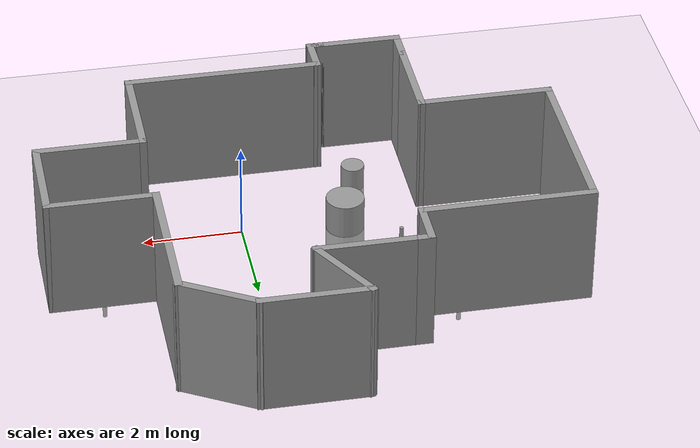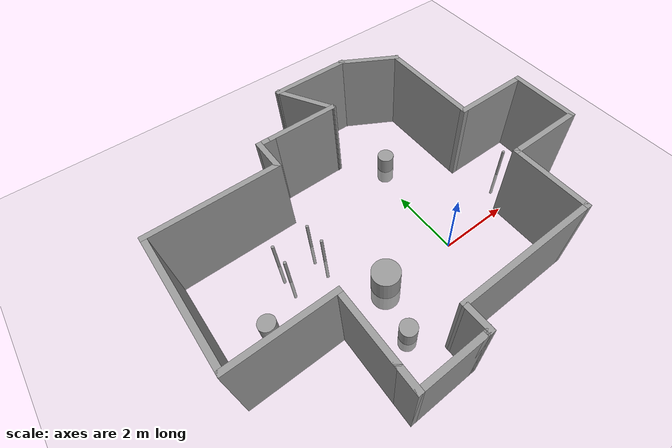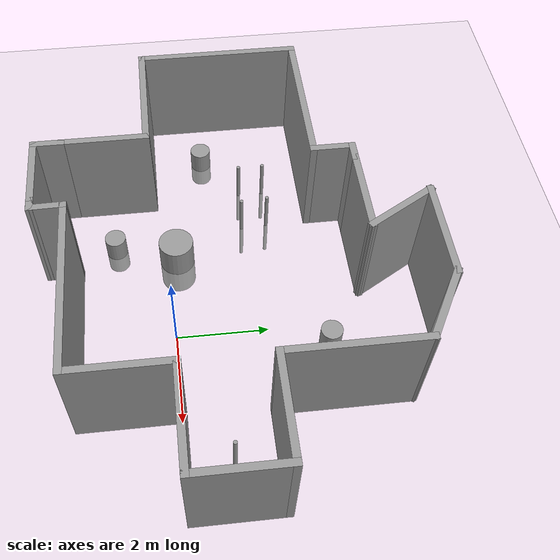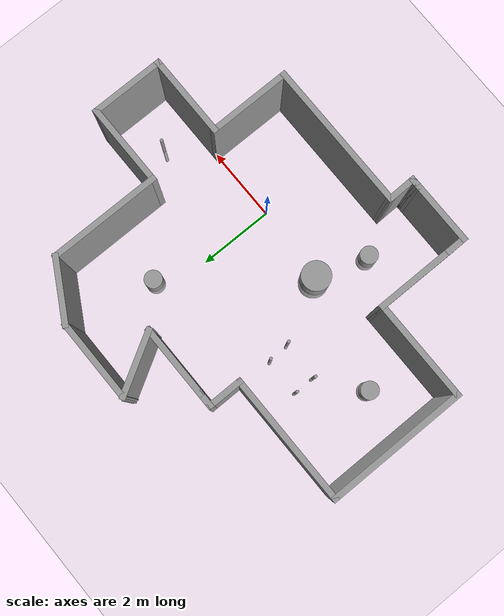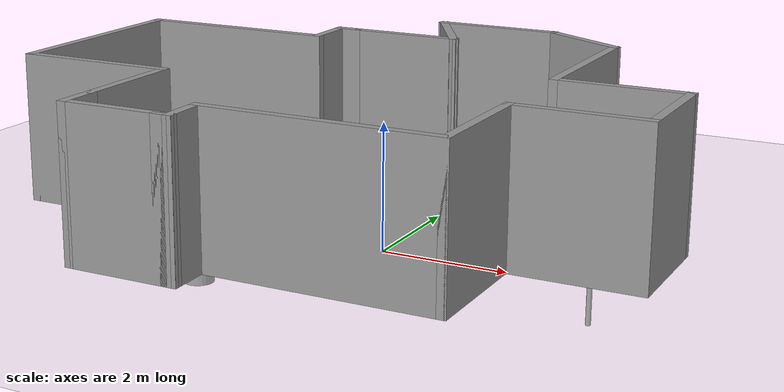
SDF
<sdf version="1.6">
 <world name="default">
  <light name="sun" type="directional">
   <pose>0 0 10 0 -0 0</pose>
   <diffuse>0.8 0.8 0.8 1</diffuse>
   <specular>0.2 0.2 0.2 1</specular>
   <attenuation>
    <range>1000</range>
    <constant>0.9</constant>
    <linear>0.01</linear>
    <quadratic>0.001</quadratic>
   </attenuation>
   <direction>-0.5 0.1 -0.9</direction>
  </light>
  <model name="ground_plane">
   <static>1</static>
   <link name="link">
    <collision name="collision">
     <geometry><plane><normal>0 0 1</normal><size>100 100</size></plane></geometry>
     <surface>
      <contact><collide_bitmask>65535</collide_bitmask></contact>
      <friction><ode><mu>100</mu><mu2>50</mu2></ode></friction>
     </surface>
    </collision>
    <visual name="visual">
     <cast_shadows>0</cast_shadows>
     <geometry><plane><normal>0 0 1</normal><size>100 100</size></plane></geometry>
     <material>
      <script><uri>file://media/materials/scripts/gazebo.material</uri><name>Gazebo/Grey</name></script>
     </material>
    </visual>
   </link>
  </model>
  <gravity>0 0 -9.8</gravity>
  <magnetic_field>6e-06 2.3e-05 -4.2e-05</magnetic_field>
  <atmosphere type="adiabatic"/>
  <physics name="default_physics" default="0" type="ode">
   <max_step_size>0.001</max_step_size>
   <real_time_factor>1</real_time_factor>
   <real_time_update_rate>1000</real_time_update_rate>
  </physics>
  <scene><ambient>0.4 0.4 0.4 1</ambient><background>0.7 0.7 0.7 1</background><shadows>1</shadows></scene>
  <audio><device>default</device></audio>
  <spherical_coordinates>
   <surface_model>EARTH_WGS84</surface_model>
   <latitude_deg>0</latitude_deg>
   <longitude_deg>0</longitude_deg>
   <elevation>0</elevation>
   <heading_deg>0</heading_deg>
  </spherical_coordinates>
  <model name="Labyrinth1">
   <pose>-1.12937 1.39455 0 0 -0 0</pose>
   <link name="Wall_20">
    <collision name="Wall_20_Collision">
     <geometry><box><size>4 0.15 2.5</size></box></geometry>
     <pose>0 0 1.25 0 -0 0</pose>
    </collision>
    <visual name="Wall_20_Visual">
     <pose>0 0 1.25 0 -0 0</pose>
     <geometry><box><size>4 0.15 2.5</size></box></geometry>
     <material>
      <script><uri>file://media/materials/scripts/gazebo.material</uri><name>Gazebo/Grey</name></script>
      <ambient>1 1 1 1</ambient>
     </material>
     <meta><layer>0</layer></meta>
    </visual>
    <pose>1.14282 -3.47013 0 0 -0 0</pose>
   </link>
   <link name="Wall_23">
    <collision name="Wall_23_Collision">
     <geometry><box><size>2.25 0.15 2.5</size></box></geometry>
     <pose>0 0 1.25 0 -0 0</pose>
    </collision>
    <visual name="Wall_23_Visual">
     <pose>0 0 1.25 0 -0 0</pose>
     <geometry><box><size>2.25 0.15 2.5</size></box></geometry>
     <material>
      <script><uri>file://media/materials/scripts/gazebo.material</uri><name>Gazebo/Grey</name></script>
      <ambient>1 1 1 1</ambient>
     </material>
     <meta><layer>0</layer></meta>
    </visual>
    <pose>3.06782 -2.42013 0 0 -0 1.5708</pose>
   </link>
   <link name="Wall_24">
    <collision name="Wall_24_Collision">
     <geometry><box><size>2.25 0.15 2.5</size></box></geometry>
     <pose>0 0 1.25 0 -0 0</pose>
    </collision>
    <visual name="Wall_24_Visual">
     <pose>0 0 1.25 0 -0 0</pose>
     <geometry><box><size>2.25 0.15 2.5</size></box></geometry>
     <material>
      <script><uri>file://media/materials/scripts/gazebo.material</uri><name>Gazebo/Grey</name></script>
      <ambient>1 1 1 1</ambient>
     </material>
     <meta><layer>0</layer></meta>
    </visual>
    <pose>4.11782 -1.37013 0 0 -0 0</pose>
   </link>
   <link name="Wall_25">
    <collision name="Wall_25_Collision">
     <geometry><box><size>2 0.15 2.5</size></box></geometry>
     <pose>0 0 1.25 0 -0 0</pose>
    </collision>
    <visual name="Wall_25_Visual">
     <pose>0 0 1.25 0 -0 0</pose>
     <geometry><box><size>2 0.15 2.5</size></box></geometry>
     <material>
      <script><uri>file://media/materials/scripts/gazebo.material</uri><name>Gazebo/Grey</name></script>
      <ambient>1 1 1 1</ambient>
     </material>
     <meta><layer>0</layer></meta>
    </visual>
    <pose>5.16782 -0.445129 0 0 -0 1.5708</pose>
   </link>
   <link name="Wall_26">
    <collision name="Wall_26_Collision">
     <geometry><box><size>2.25 0.15 2.5</size></box></geometry>
     <pose>0 0 1.25 0 -0 0</pose>
    </collision>
    <visual name="Wall_26_Visual">
     <pose>0 0 1.25 0 -0 0</pose>
     <geometry><box><size>2.25 0.15 2.5</size></box></geometry>
     <material>
      <script><uri>file://media/materials/scripts/gazebo.material</uri><name>Gazebo/Grey</name></script>
      <ambient>1 1 1 1</ambient>
     </material>
     <meta><layer>0</layer></meta>
    </visual>
    <pose>4.11782 0.479871 0 0 -0 3.14159</pose>
   </link>
   <link name="Wall_29">
    <collision name="Wall_29_Collision">
     <geometry><box><size>3 0.15 2.5</size></box></geometry>
     <pose>0 0 1.25 0 -0 0</pose>
    </collision>
    <visual name="Wall_29_Visual">
     <pose>0 0 1.25 0 -0 0</pose>
     <geometry><box><size>3 0.15 2.5</size></box></geometry>
     <material>
      <script><uri>file://media/materials/scripts/gazebo.material</uri><name>Gazebo/Grey</name></script>
      <ambient>1 1 1 1</ambient>
     </material>
     <meta><layer>0</layer></meta>
    </visual>
    <pose>3.06782 1.90487 0 0 -0 1.5708</pose>
   </link>
   <link name="Wall_30">
    <collision name="Wall_30_Collision">
     <geometry><box><size>1.75 0.15 2.5</size></box></geometry>
     <pose>0 0 1.25 0 -0 0</pose>
    </collision>
    <visual name="Wall_30_Visual">
     <pose>0 0 1.25 0 -0 0</pose>
     <geometry><box><size>1.75 0.15 2.5</size></box></geometry>
     <material>
      <script><uri>file://media/materials/scripts/gazebo.material</uri><name>Gazebo/Grey</name></script>
      <ambient>1 1 1 1</ambient>
     </material>
     <meta><layer>0</layer></meta>
    </visual>
    <pose>2.375 3.72987 0 0 -0 2.61799</pose>
   </link>
   <link name="Wall_31">
    <collision name="Wall_31_Collision">
     <geometry><box><size>2.25 0.15 2.5</size></box></geometry>
     <pose>0 0 1.25 0 -0 0</pose>
    </collision>
    <visual name="Wall_31_Visual">
     <pose>0 0 1.25 0 -0 0</pose>
     <geometry><box><size>2.25 0.15 2.5</size></box></geometry>
     <material>
      <script><uri>file://media/materials/scripts/gazebo.material</uri><name>Gazebo/Grey</name></script>
      <ambient>1 1 1 1</ambient>
     </material>
     <meta><layer>0</layer></meta>
    </visual>
    <pose>0.63218 4.12987 0 0 -0 3.14159</pose>
   </link>
   <link name="Wall_32">
    <collision name="Wall_32_Collision">
     <geometry><box><size>1.75 0.15 2.5</size></box></geometry>
     <pose>0 0 1.25 0 -0 0</pose>
    </collision>
    <visual name="Wall_32_Visual">
     <pose>0 0 1.25 0 -0 0</pose>
     <geometry><box><size>1.75 0.15 2.5</size></box></geometry>
     <material>
      <script><uri>file://media/materials/scripts/gazebo.material</uri><name>Gazebo/Grey</name></script>
      <ambient>1 1 1 1</ambient>
     </material>
     <meta><layer>0</layer></meta>
    </visual>
    <pose>-0.01782 3.43705 0 0 -0 -1.0472</pose>
   </link>
   <link name="Wall_33">
    <collision name="Wall_33_Collision">
     <geometry><box><size>2 0.15 2.5</size></box></geometry>
     <pose>0 0 1.25 0 -0 0</pose>
    </collision>
    <visual name="Wall_33_Visual">
     <pose>0 0 1.25 0 -0 0</pose>
     <geometry><box><size>2 0.15 2.5</size></box></geometry>
     <material>
      <script><uri>file://media/materials/scripts/gazebo.material</uri><name>Gazebo/Grey</name></script>
      <ambient>1 1 1 1</ambient>
     </material>
     <meta><layer>0</layer></meta>
    </visual>
    <pose>-0.54282 2.74423 0 0 -0 3.14159</pose>
   </link>
   <link name="Wall_34">
    <collision name="Wall_34_Collision">
     <geometry><box><size>0.5 0.15 2.5</size></box></geometry>
     <pose>0 0 1.25 0 -0 0</pose>
    </collision>
    <visual name="Wall_34_Visual">
     <pose>0 0 1.25 0 -0 0</pose>
     <geometry><box><size>0.5 0.15 2.5</size></box></geometry>
     <material>
      <script><uri>file://media/materials/scripts/gazebo.material</uri><name>Gazebo/Grey</name></script>
      <ambient>1 1 1 1</ambient>
     </material>
     <meta><layer>0</layer></meta>
    </visual>
    <pose>-1.64282 2.74423 0 0 -0 3.14159</pose>
   </link>
   <link name="Wall_35">
    <collision name="Wall_35_Collision">
     <geometry><box><size>1 0.15 2.5</size></box></geometry>
     <pose>0 0 1.25 0 -0 0</pose>
    </collision>
    <visual name="Wall_35_Visual">
     <pose>0 0 1.25 0 -0 0</pose>
     <geometry><box><size>1 0.15 2.5</size></box></geometry>
     <material>
      <script><uri>file://media/materials/scripts/gazebo.material</uri><name>Gazebo/Grey</name></script>
      <ambient>1 1 1 1</ambient>
     </material>
     <meta><layer>0</layer></meta>
    </visual>
    <pose>-1.81782 2.31923 0 0 -0 -1.5708</pose>
   </link>
   <link name="Wall_36">
    <collision name="Wall_36_Collision">
     <geometry><box><size>3.5 0.15 2.5</size></box></geometry>
     <pose>0 0 1.25 0 -0 0</pose>
    </collision>
    <visual name="Wall_36_Visual">
     <pose>0 0 1.25 0 -0 0</pose>
     <geometry><box><size>3.5 0.15 2.5</size></box></geometry>
     <material>
      <script><uri>file://media/materials/scripts/gazebo.material</uri><name>Gazebo/Grey</name></script>
      <ambient>1 1 1 1</ambient>
     </material>
     <meta><layer>0</layer></meta>
    </visual>
    <pose>-3.49282 1.89423 0 0 -0 3.14159</pose>
   </link>
   <link name="Wall_37">
    <collision name="Wall_37_Collision">
     <geometry><box><size>3.75 0.15 2.5</size></box></geometry>
     <pose>0 0 1.25 0 -0 0</pose>
    </collision>
    <visual name="Wall_37_Visual">
     <pose>0 0 1.25 0 -0 0</pose>
     <geometry><box><size>3.75 0.15 2.5</size></box></geometry>
     <material>
      <script><uri>file://media/materials/scripts/gazebo.material</uri><name>Gazebo/Grey</name></script>
      <ambient>1 1 1 1</ambient>
     </material>
     <meta><layer>0</layer></meta>
    </visual>
    <pose>-5.16782 0.094231 0 0 -0 -1.5708</pose>
   </link>
   <link name="Wall_38">
    <collision name="Wall_38_Collision">
     <geometry><box><size>2.75 0.15 2.5</size></box></geometry>
     <pose>0 0 1.25 0 -0 0</pose>
    </collision>
    <visual name="Wall_38_Visual">
     <pose>0 0 1.25 0 -0 0</pose>
     <geometry><box><size>2.75 0.15 2.5</size></box></geometry>
     <material>
      <script><uri>file://media/materials/scripts/gazebo.material</uri><name>Gazebo/Grey</name></script>
      <ambient>1 1 1 1</ambient>
     </material>
     <meta><layer>0</layer></meta>
    </visual>
    <pose>-3.86782 -1.70577 0 0 -0 0</pose>
   </link>
   <link name="Wall_43">
    <collision name="Wall_43_Collision">
     <geometry><box><size>2 0.15 2.5</size></box></geometry>
     <pose>0 0 1.25 0 -0 0</pose>
    </collision>
    <visual name="Wall_43_Visual">
     <pose>0 0 1.25 0 -0 0</pose>
     <geometry><box><size>2 0.15 2.5</size></box></geometry>
     <material>
      <script><uri>file://media/materials/scripts/gazebo.material</uri><name>Gazebo/Grey</name></script>
      <ambient>1 1 1 1</ambient>
     </material>
     <meta><layer>0</layer></meta>
    </visual>
    <pose>-2.56782 -2.63077 0 0 -0 -1.5708</pose>
   </link>
   <link name="Wall_44">
    <collision name="Wall_44_Collision">
     <geometry><box><size>0.75 0.15 2.5</size></box></geometry>
     <pose>0 0 1.25 0 -0 0</pose>
    </collision>
    <visual name="Wall_44_Visual">
     <pose>0 0 1.25 0 -0 0</pose>
     <geometry><box><size>0.75 0.15 2.5</size></box></geometry>
     <material>
      <script><uri>file://media/materials/scripts/gazebo.material</uri><name>Gazebo/Grey</name></script>
      <ambient>1 1 1 1</ambient>
     </material>
     <meta><layer>0</layer></meta>
    </visual>
    <pose>-2.56782 -3.85577 0 0 -0 -1.5708</pose>
   </link>
   <link name="Wall_45">
    <collision name="Wall_45_Collision">
     <geometry><box><size>1.75 0.15 2.5</size></box></geometry>
     <pose>0 0 1.25 0 -0 0</pose>
    </collision>
    <visual name="Wall_45_Visual">
     <pose>0 0 1.25 0 -0 0</pose>
     <geometry><box><size>1.75 0.15 2.5</size></box></geometry>
     <material>
      <script><uri>file://media/materials/scripts/gazebo.material</uri><name>Gazebo/Grey</name></script>
      <ambient>1 1 1 1</ambient>
     </material>
     <meta><layer>0</layer></meta>
    </visual>
    <pose>-1.76782 -4.15577 0 0 -0 0</pose>
   </link>
   <link name="Wall_46">
    <collision name="Wall_46_Collision">
     <geometry><box><size>0.25 0.15 2.5</size></box></geometry>
     <pose>0 0 1.25 0 -0 0</pose>
    </collision>
    <visual name="Wall_46_Visual">
     <pose>0 0 1.25 0 -0 0</pose>
     <geometry><box><size>0.25 0.15 2.5</size></box></geometry>
     <material>
      <script><uri>file://media/materials/scripts/gazebo.material</uri><name>Gazebo/Grey</name></script>
      <ambient>1 1 1 1</ambient>
     </material>
     <meta><layer>0</layer></meta>
    </visual>
    <pose>-0.91782 -4.15577 0 0 -0 0</pose>
   </link>
   <link name="Wall_47">
    <collision name="Wall_47_Collision">
     <geometry><box><size>0.25 0.15 2.5</size></box></geometry>
     <pose>0 0 1.25 0 -0 0</pose>
    </collision>
    <visual name="Wall_47_Visual">
     <pose>0 0 1.25 0 -0 0</pose>
     <geometry><box><size>0.25 0.15 2.5</size></box></geometry>
     <material>
      <script><uri>file://media/materials/scripts/gazebo.material</uri><name>Gazebo/Grey</name></script>
      <ambient>1 1 1 1</ambient>
     </material>
     <meta><layer>0</layer></meta>
    </visual>
    <pose>-0.91782 -4.15577 0 0 -0 3.14159</pose>
   </link>
   <link name="Wall_56">
    <collision name="Wall_56_Collision">
     <geometry><box><size>0.25 0.15 2.5</size></box></geometry>
     <pose>0 0 1.25 0 -0 0</pose>
    </collision>
    <visual name="Wall_56_Visual">
     <pose>0 0 1.25 0 -0 0</pose>
     <geometry><box><size>0.25 0.15 2.5</size></box></geometry>
     <material>
      <script><uri>file://media/materials/scripts/gazebo.material</uri><name>Gazebo/Grey</name></script>
      <ambient>1 1 1 1</ambient>
     </material>
     <meta><layer>0</layer></meta>
    </visual>
    <pose>-0.81782 -4.15577 0 0 -0 0</pose>
   </link>
   <link name="Wall_57">
    <collision name="Wall_57_Collision">
     <geometry><box><size>0.835791 0.15 2.5</size></box></geometry>
     <pose>0 0 1.25 0 -0 0</pose>
    </collision>
    <visual name="Wall_57_Visual">
     <pose>0 0 1.25 0 -0 0</pose>
     <geometry><box><size>0.835791 0.15 2.5</size></box></geometry>
     <material>
      <script><uri>file://media/materials/scripts/gazebo.material</uri><name>Gazebo/Grey</name></script>
      <ambient>1 1 1 1</ambient>
     </material>
     <meta><layer>0</layer></meta>
    </visual>
    <pose>-0.775 -3.81295 0 0 -0 1.59174</pose>
   </link>
   <static>1</static>
  </model>
  <model name="table_leg">
   <link name="link_0">
    <inertial>
     <mass>0.0133696</mass>
     <inertia>
      <ixx>0.00420906</ixx>
      <ixy>0</ixy>
      <ixz>0</ixz>
      <iyy>0.00420906</iyy>
      <iyz>0</iyz>
      <izz>1.1504e-05</izz>
     </inertia>
    </inertial>
    <pose>-5e-06 0 0 0 -0 0</pose>
    <visual name="visual">
     <geometry><cylinder><radius>0.041484</radius><length>1.94235</length></cylinder></geometry>
     <material>
      <lighting>1</lighting>
      <script><uri>file://media/materials/scripts/gazebo.material</uri><name>Gazebo/Grey</name></script>
     </material>
    </visual>
    <collision name="collision">
     <geometry><cylinder><radius>0.041484</radius><length>1.94235</length></cylinder></geometry>
     <surface>
      <friction>
       <ode><mu>1</mu><mu2>1</mu2><fdir1>0 0 0</fdir1><slip1>0</slip1><slip2>0</slip2></ode>
       <torsional>
        <coefficient>1</coefficient>
        <patch_radius>0</patch_radius>
        <surface_radius>0</surface_radius>
        <use_patch_radius>1</use_patch_radius>
        <ode><slip>0</slip></ode>
       </torsional>
      </friction>
      <bounce><restitution_coefficient>0</restitution_coefficient><threshold>1e+06</threshold></bounce>
      <contact>
       <collide_without_contact>0</collide_without_contact>
       <collide_without_contact_bitmask>1</collide_without_contact_bitmask>
       <collide_bitmask>1</collide_bitmask>
       <ode>
        <soft_cfm>0</soft_cfm>
        <soft_erp>0.2</soft_erp>
        <kp>1e+13</kp>
        <kd>1</kd>
        <max_vel>0.01</max_vel>
        <min_depth>0</min_depth>
       </ode>
       <bullet>
        <split_impulse>1</split_impulse>
        <split_impulse_penetration_threshold>-0.01</split_impulse_penetration_threshold>
        <soft_cfm>0</soft_cfm>
        <soft_erp>0.2</soft_erp>
        <kp>1e+13</kp>
        <kd>1</kd>
       </bullet>
      </contact>
     </surface>
    </collision>
   </link>
   <static>0</static>
   <pose>-3.9606 2.33283 0 0 -0 0</pose>
  </model>
  <model name="table_leg_0">
   <link name="link_0">
    <inertial>
     <mass>0.0133696</mass>
     <inertia>
      <ixx>0.00420906</ixx>
      <ixy>0</ixy>
      <ixz>0</ixz>
      <iyy>0.00420906</iyy>
      <iyz>0</iyz>
      <izz>1.1504e-05</izz>
     </inertia>
    </inertial>
    <pose>-5e-06 0 0 0 -0 0</pose>
    <visual name="visual">
     <geometry><cylinder><radius>0.041484</radius><length>1.94235</length></cylinder></geometry>
     <material>
      <lighting>1</lighting>
      <script><uri>file://media/materials/scripts/gazebo.material</uri><name>Gazebo/Grey</name></script>
     </material>
    </visual>
    <collision name="collision">
     <geometry><cylinder><radius>0.041484</radius><length>1.94235</length></cylinder></geometry>
     <surface>
      <friction>
       <ode><mu>1</mu><mu2>1</mu2><fdir1>0 0 0</fdir1><slip1>0</slip1><slip2>0</slip2></ode>
       <torsional>
        <coefficient>1</coefficient>
        <patch_radius>0</patch_radius>
        <surface_radius>0</surface_radius>
        <use_patch_radius>1</use_patch_radius>
        <ode><slip>0</slip></ode>
       </torsional>
      </friction>
      <bounce><restitution_coefficient>0</restitution_coefficient><threshold>1e+06</threshold></bounce>
      <contact>
       <collide_without_contact>0</collide_without_contact>
       <collide_without_contact_bitmask>1</collide_without_contact_bitmask>
       <collide_bitmask>1</collide_bitmask>
       <ode>
        <soft_cfm>0</soft_cfm>
        <soft_erp>0.2</soft_erp>
        <kp>1e+13</kp>
        <kd>1</kd>
        <max_vel>0.01</max_vel>
        <min_depth>0</min_depth>
       </ode>
       <bullet>
        <split_impulse>1</split_impulse>
        <split_impulse_penetration_threshold>-0.01</split_impulse_penetration_threshold>
        <soft_cfm>0</soft_cfm>
        <soft_erp>0.2</soft_erp>
        <kp>1e+13</kp>
        <kd>1</kd>
       </bullet>
      </contact>
     </surface>
    </collision>
   </link>
   <static>0</static>
   <pose>-3.95816 1.76145 0 0 -0 0</pose>
  </model>
  <model name="table_leg_1">
   <link name="link_0">
    <inertial>
     <mass>0.0133696</mass>
     <inertia>
      <ixx>0.00420906</ixx>
      <ixy>0</ixy>
      <ixz>0</ixz>
      <iyy>0.00420906</iyy>
      <iyz>0</iyz>
      <izz>1.1504e-05</izz>
     </inertia>
    </inertial>
    <pose>-5e-06 0 0 0 -0 0</pose>
    <visual name="visual">
     <geometry><cylinder><radius>0.041484</radius><length>1.94235</length></cylinder></geometry>
     <material>
      <lighting>1</lighting>
      <script><uri>file://media/materials/scripts/gazebo.material</uri><name>Gazebo/Grey</name></script>
     </material>
    </visual>
    <collision name="collision">
     <geometry><cylinder><radius>0.041484</radius><length>1.94235</length></cylinder></geometry>
     <surface>
      <friction>
       <ode><mu>1</mu><mu2>1</mu2><fdir1>0 0 0</fdir1><slip1>0</slip1><slip2>0</slip2></ode>
       <torsional>
        <coefficient>1</coefficient>
        <patch_radius>0</patch_radius>
        <surface_radius>0</surface_radius>
        <use_patch_radius>1</use_patch_radius>
        <ode><slip>0</slip></ode>
       </torsional>
      </friction>
      <bounce><restitution_coefficient>0</restitution_coefficient><threshold>1e+06</threshold></bounce>
      <contact>
       <collide_without_contact>0</collide_without_contact>
       <collide_without_contact_bitmask>1</collide_without_contact_bitmask>
       <collide_bitmask>1</collide_bitmask>
       <ode>
        <soft_cfm>0</soft_cfm>
        <soft_erp>0.2</soft_erp>
        <kp>1e+13</kp>
        <kd>1</kd>
        <max_vel>0.01</max_vel>
        <min_depth>0</min_depth>
       </ode>
       <bullet>
        <split_impulse>1</split_impulse>
        <split_impulse_penetration_threshold>-0.01</split_impulse_penetration_threshold>
        <soft_cfm>0</soft_cfm>
        <soft_erp>0.2</soft_erp>
        <kp>1e+13</kp>
        <kd>1</kd>
       </bullet>
      </contact>
     </surface>
    </collision>
   </link>
   <static>0</static>
   <pose>-2.94706 2.31739 0 0 -0 0</pose>
  </model>
  <model name="table_leg_2">
   <link name="link_0">
    <inertial>
     <mass>0.0133696</mass>
     <inertia>
      <ixx>0.00420906</ixx>
      <ixy>0</ixy>
      <ixz>0</ixz>
      <iyy>0.00420906</iyy>
      <iyz>0</iyz>
      <izz>1.1504e-05</izz>
     </inertia>
    </inertial>
    <pose>-5e-06 0 0 0 -0 0</pose>
    <visual name="visual">
     <geometry><cylinder><radius>0.041484</radius><length>1.94235</length></cylinder></geometry>
     <material>
      <lighting>1</lighting>
      <script><uri>file://media/materials/scripts/gazebo.material</uri><name>Gazebo/Grey</name></script>
     </material>
    </visual>
    <collision name="collision">
     <geometry><cylinder><radius>0.041484</radius><length>1.94235</length></cylinder></geometry>
     <surface>
      <friction>
       <ode><mu>1</mu><mu2>1</mu2><fdir1>0 0 0</fdir1><slip1>0</slip1><slip2>0</slip2></ode>
       <torsional>
        <coefficient>1</coefficient>
        <patch_radius>0</patch_radius>
        <surface_radius>0</surface_radius>
        <use_patch_radius>1</use_patch_radius>
        <ode><slip>0</slip></ode>
       </torsional>
      </friction>
      <bounce><restitution_coefficient>0</restitution_coefficient><threshold>1e+06</threshold></bounce>
      <contact>
       <collide_without_contact>0</collide_without_contact>
       <collide_without_contact_bitmask>1</collide_without_contact_bitmask>
       <collide_bitmask>1</collide_bitmask>
       <ode>
        <soft_cfm>0</soft_cfm>
        <soft_erp>0.2</soft_erp>
        <kp>1e+13</kp>
        <kd>1</kd>
        <max_vel>0.01</max_vel>
        <min_depth>0</min_depth>
       </ode>
       <bullet>
        <split_impulse>1</split_impulse>
        <split_impulse_penetration_threshold>-0.01</split_impulse_penetration_threshold>
        <soft_cfm>0</soft_cfm>
        <soft_erp>0.2</soft_erp>
        <kp>1e+13</kp>
        <kd>1</kd>
       </bullet>
      </contact>
     </surface>
    </collision>
   </link>
   <static>0</static>
   <pose>-2.90155 1.72376 0 0 -0 0</pose>
  </model>
  <model name="small_cylinder">
   <link name="link_2">
    <inertial>
     <mass>0.838617</mass>
     <inertia>
      <ixx>0.166859</ixx>
      <ixy>0</ixy>
      <ixz>0</ixz>
      <iyy>0.166859</iyy>
      <iyz>0</iyz>
      <izz>0.0631896</izz>
     </inertia>
    </inertial>
    <pose>-0.01653 1.06933 0 0 -0 0</pose>
    <visual name="visual">
     <geometry><cylinder><radius>0.388201</radius><length>1.39123</length></cylinder></geometry>
     <material>
      <lighting>1</lighting>
      <script><uri>file://media/materials/scripts/gazebo.material</uri><name>Gazebo/Grey</name></script>
     </material>
    </visual>
    <collision name="collision">
     <geometry><cylinder><radius>0.388201</radius><length>1.39123</length></cylinder></geometry>
     <surface>
      <friction>
       <ode><mu>1</mu><mu2>1</mu2><fdir1>0 0 0</fdir1><slip1>0</slip1><slip2>0</slip2></ode>
       <torsional>
        <coefficient>1</coefficient>
        <patch_radius>0</patch_radius>
        <surface_radius>0</surface_radius>
        <use_patch_radius>1</use_patch_radius>
        <ode><slip>0</slip></ode>
       </torsional>
      </friction>
      <bounce><restitution_coefficient>0</restitution_coefficient><threshold>1e+06</threshold></bounce>
      <contact>
       <collide_without_contact>0</collide_without_contact>
       <collide_without_contact_bitmask>1</collide_without_contact_bitmask>
       <collide_bitmask>1</collide_bitmask>
       <ode>
        <soft_cfm>0</soft_cfm>
        <soft_erp>0.2</soft_erp>
        <kp>1e+13</kp>
        <kd>1</kd>
        <max_vel>0.01</max_vel>
        <min_depth>0</min_depth>
       </ode>
       <bullet>
        <split_impulse>1</split_impulse>
        <split_impulse_penetration_threshold>-0.01</split_impulse_penetration_threshold>
        <soft_cfm>0</soft_cfm>
        <soft_erp>0.2</soft_erp>
        <kp>1e+13</kp>
        <kd>1</kd>
       </bullet>
      </contact>
     </surface>
    </collision>
   </link>
   <static>0</static>
   <pose>-2.06438 -0.927446 0 0 -0 0</pose>
  </model>
  <model name="table_leg_3">
   <link name="link_0">
    <inertial>
     <mass>0.0133696</mass>
     <inertia>
      <ixx>0.00420906</ixx>
      <ixy>0</ixy>
      <ixz>0</ixz>
      <iyy>0.00420906</iyy>
      <iyz>0</iyz>
      <izz>1.1504e-05</izz>
     </inertia>
    </inertial>
    <pose>-5e-06 0 0 0 -0 0</pose>
    <visual name="visual">
     <geometry><cylinder><radius>0.041484</radius><length>1.94235</length></cylinder></geometry>
     <material>
      <lighting>1</lighting>
      <script><uri>file://media/materials/scripts/gazebo.material</uri><name>Gazebo/Grey</name></script>
     </material>
    </visual>
    <collision name="collision">
     <geometry><cylinder><radius>0.041484</radius><length>1.94235</length></cylinder></geometry>
     <surface>
      <friction>
       <ode><mu>1</mu><mu2>1</mu2><fdir1>0 0 0</fdir1><slip1>0</slip1><slip2>0</slip2></ode>
       <torsional>
        <coefficient>1</coefficient>
        <patch_radius>0</patch_radius>
        <surface_radius>0</surface_radius>
        <use_patch_radius>1</use_patch_radius>
        <ode><slip>0</slip></ode>
       </torsional>
      </friction>
      <bounce><restitution_coefficient>0</restitution_coefficient><threshold>1e+06</threshold></bounce>
      <contact>
       <collide_without_contact>0</collide_without_contact>
       <collide_without_contact_bitmask>1</collide_without_contact_bitmask>
       <collide_bitmask>1</collide_bitmask>
       <ode>
        <soft_cfm>0</soft_cfm>
        <soft_erp>0.2</soft_erp>
        <kp>1e+13</kp>
        <kd>1</kd>
        <max_vel>0.01</max_vel>
        <min_depth>0</min_depth>
       </ode>
       <bullet>
        <split_impulse>1</split_impulse>
        <split_impulse_penetration_threshold>-0.01</split_impulse_penetration_threshold>
        <soft_cfm>0</soft_cfm>
        <soft_erp>0.2</soft_erp>
        <kp>1e+13</kp>
        <kd>1</kd>
       </bullet>
      </contact>
     </surface>
    </collision>
   </link>
   <static>0</static>
   <pose>2.93585 0.966825 0 0 -0 0</pose>
  </model>
  <model name="zylinder_0">
   <link name="link_0">
    <inertial>
     <mass>0.223602</mass>
     <inertia>
      <ixx>0.0217583</ixx>
      <ixy>0</ixy>
      <ixz>0</ixz>
      <iyy>0.0217583</iyy>
      <iyz>0</iyz>
      <izz>0.00624957</izz>
     </inertia>
    </inertial>
    <pose>-1e-06 5e-06 0 0 -0 0</pose>
    <visual name="visual">
     <geometry><cylinder><radius>0.23643</radius><length>1</length></cylinder></geometry>
     <material>
      <lighting>1</lighting>
      <script><uri>file://media/materials/scripts/gazebo.material</uri><name>Gazebo/Grey</name></script>
     </material>
    </visual>
    <collision name="collision">
     <geometry><cylinder><radius>0.23643</radius><length>1</length></cylinder></geometry>
     <surface>
      <friction>
       <ode><mu>1</mu><mu2>1</mu2><fdir1>0 0 0</fdir1><slip1>0</slip1><slip2>0</slip2></ode>
       <torsional>
        <coefficient>1</coefficient>
        <patch_radius>0</patch_radius>
        <surface_radius>0</surface_radius>
        <use_patch_radius>1</use_patch_radius>
        <ode><slip>0</slip></ode>
       </torsional>
      </friction>
      <bounce><restitution_coefficient>0</restitution_coefficient><threshold>1e+06</threshold></bounce>
      <contact>
       <collide_without_contact>0</collide_without_contact>
       <collide_without_contact_bitmask>1</collide_without_contact_bitmask>
       <collide_bitmask>1</collide_bitmask>
       <ode>
        <soft_cfm>0</soft_cfm>
        <soft_erp>0.2</soft_erp>
        <kp>1e+13</kp>
        <kd>1</kd>
        <max_vel>0.01</max_vel>
        <min_depth>0</min_depth>
       </ode>
       <bullet>
        <split_impulse>1</split_impulse>
        <split_impulse_penetration_threshold>-0.01</split_impulse_penetration_threshold>
        <soft_cfm>0</soft_cfm>
        <soft_erp>0.2</soft_erp>
        <kp>1e+13</kp>
        <kd>1</kd>
       </bullet>
      </contact>
     </surface>
    </collision>
   </link>
   <static>0</static>
   <pose>-2.49988 -1.23798 0 0 -0 0</pose>
  </model>
  <model name="zylinder_1">
   <link name="link_0">
    <inertial>
     <mass>0.223602</mass>
     <inertia>
      <ixx>0.0217583</ixx>
      <ixy>0</ixy>
      <ixz>0</ixz>
      <iyy>0.0217583</iyy>
      <iyz>0</iyz>
      <izz>0.00624957</izz>
     </inertia>
    </inertial>
    <pose>-1e-06 5e-06 0 0 -0 0</pose>
    <visual name="visual">
     <geometry><cylinder><radius>0.23643</radius><length>1</length></cylinder></geometry>
     <material>
      <lighting>1</lighting>
      <script><uri>file://media/materials/scripts/gazebo.material</uri><name>Gazebo/Grey</name></script>
     </material>
    </visual>
    <collision name="collision">
     <geometry><cylinder><radius>0.23643</radius><length>1</length></cylinder></geometry>
     <surface>
      <friction>
       <ode><mu>1</mu><mu2>1</mu2><fdir1>0 0 0</fdir1><slip1>0</slip1><slip2>0</slip2></ode>
       <torsional>
        <coefficient>1</coefficient>
        <patch_radius>0</patch_radius>
        <surface_radius>0</surface_radius>
        <use_patch_radius>1</use_patch_radius>
        <ode><slip>0</slip></ode>
       </torsional>
      </friction>
      <bounce><restitution_coefficient>0</restitution_coefficient><threshold>1e+06</threshold></bounce>
      <contact>
       <collide_without_contact>0</collide_without_contact>
       <collide_without_contact_bitmask>1</collide_without_contact_bitmask>
       <collide_bitmask>1</collide_bitmask>
       <ode>
        <soft_cfm>0</soft_cfm>
        <soft_erp>0.2</soft_erp>
        <kp>1e+13</kp>
        <kd>1</kd>
        <max_vel>0.01</max_vel>
        <min_depth>0</min_depth>
       </ode>
       <bullet>
        <split_impulse>1</split_impulse>
        <split_impulse_penetration_threshold>-0.01</split_impulse_penetration_threshold>
        <soft_cfm>0</soft_cfm>
        <soft_erp>0.2</soft_erp>
        <kp>1e+13</kp>
        <kd>1</kd>
       </bullet>
      </contact>
     </surface>
    </collision>
   </link>
   <static>0</static>
   <pose>-5.06284 0.918434 0 0 -0 0</pose>
  </model>
  <model name="zylinder">
   <link name="link_0">
    <inertial>
     <mass>0.223602</mass>
     <inertia>
      <ixx>0.0217583</ixx>
      <ixy>0</ixy>
      <ixz>0</ixz>
      <iyy>0.0217583</iyy>
      <iyz>0</iyz>
      <izz>0.00624957</izz>
     </inertia>
    </inertial>
    <pose>-1e-06 5e-06 0 0 -0 0</pose>
    <visual name="visual">
     <geometry><cylinder><radius>0.23643</radius><length>1</length></cylinder></geometry>
     <material>
      <lighting>1</lighting>
      <script><uri>file://media/materials/scripts/gazebo.material</uri><name>Gazebo/Grey</name></script>
     </material>
    </visual>
    <collision name="collision">
     <geometry><cylinder><radius>0.23643</radius><length>1</length></cylinder></geometry>
     <surface>
      <friction>
       <ode><mu>1</mu><mu2>1</mu2><fdir1>0 0 0</fdir1><slip1>0</slip1><slip2>0</slip2></ode>
       <torsional>
        <coefficient>1</coefficient>
        <patch_radius>0</patch_radius>
        <surface_radius>0</surface_radius>
        <use_patch_radius>1</use_patch_radius>
        <ode><slip>0</slip></ode>
       </torsional>
      </friction>
      <bounce><restitution_coefficient>0</restitution_coefficient><threshold>1e+06</threshold></bounce>
      <contact>
       <collide_without_contact>0</collide_without_contact>
       <collide_without_contact_bitmask>1</collide_without_contact_bitmask>
       <collide_bitmask>1</collide_bitmask>
       <ode>
        <soft_cfm>0</soft_cfm>
        <soft_erp>0.2</soft_erp>
        <kp>1e+13</kp>
        <kd>1</kd>
        <max_vel>0.01</max_vel>
        <min_depth>0</min_depth>
       </ode>
       <bullet>
        <split_impulse>1</split_impulse>
        <split_impulse_penetration_threshold>-0.01</split_impulse_penetration_threshold>
        <soft_cfm>0</soft_cfm>
        <soft_erp>0.2</soft_erp>
        <kp>1e+13</kp>
        <kd>1</kd>
       </bullet>
      </contact>
     </surface>
    </collision>
   </link>
   <static>0</static>
   <pose>0.435098 3.29017 0 0 -0 0</pose>
  </model>
 </world>
</sdf>
